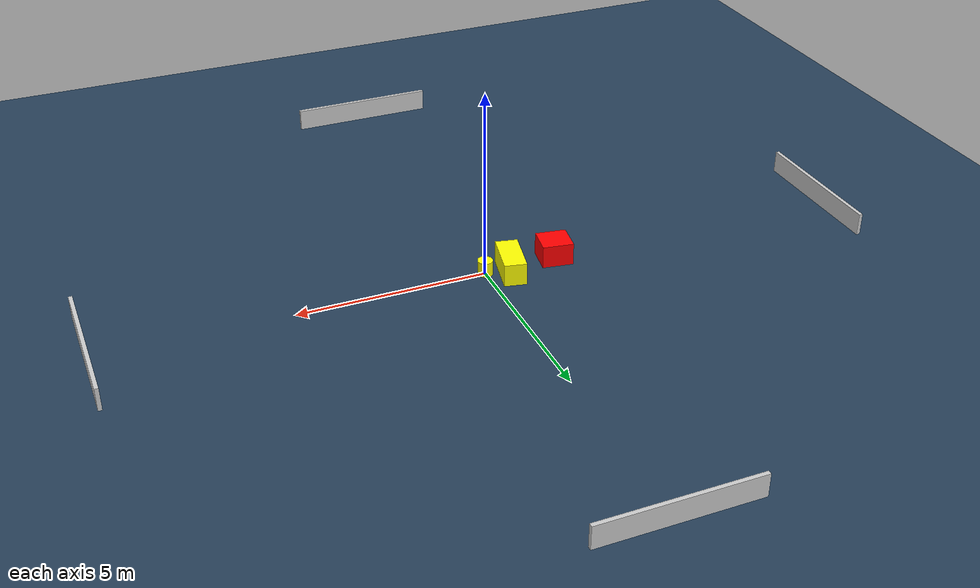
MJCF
<?xml version="1.0" ?>
<mujoco model="generated_environment">
  <option timestep="0.01" integrator="RK4" cone="elliptic"/>
  <default>
    <geom density="1"/>
  </default>
  <asset>
    <texture builtin="gradient" height="3072" name="skybox" rgb1="0.3 0.5 0.7" rgb2="0 0 0" type="skybox" width="512"/>
    <texture builtin="checker" height="300" name="groundplane" rgb1="0.2 0.3 0.4" rgb2="0.1 0.2 0.3" type="2d" width="300"/>
    <material name="groundplane" reflectance="0.2" texrepeat="5 5" texture="groundplane"/>
  </asset>
  <worldbody>
    <light dir="0 0 -1" directional="true" pos="0 0 1.5"/>
    <geom condim="3" friction="0.5 0.005 0.001" material="groundplane" name="floor" pos="0 0 0" size="0 0 0.05" type="plane"/>
    <body name="walls">
      <geom name="wall_1" condim="4" pos="-10.0 0.0 0.3" rgba="0.800000011920929 0.800000011920929 0.800000011920929 1.0" size="0.05 2.0 0.3" type="box"/>
      <geom name="wall_2" condim="4" pos="10.0 0.0 0.3" rgba="0.800000011920929 0.800000011920929 0.800000011920929 1.0" size="0.05 2.0 0.3" type="box"/>
      <geom name="wall_3" condim="4" pos="0.0 -10.0 0.3" rgba="0.800000011920929 0.800000011920929 0.800000011920929 1.0" size="2.0 0.05 0.3" type="box"/>
      <geom name="wall_4" condim="4" pos="0.0 10.0 0.3" rgba="0.800000011920929 0.800000011920929 0.800000011920929 1.0" size="2.0 0.05 0.3" type="box"/>
    </body>
    <body name="robot">
      <joint name="joint_x" type="slide" pos="0 0 0" axis="1 0 0"/>
      <joint name="joint_y" type="slide" pos="0 0 0" axis="0 1 0"/>
      <geom name="robot" type="cylinder" pos="0.0 0.0 0.2" size="0.2 0.2 0.0" mass="5.0" friction="1.0 0.005 0.0001" condim="4" rgba="1.0 1.0 0.0 1.0"/>
    </body>
    <body name="obstacle_1_movable">
      <geom name="obstacle_1_movable" condim="4" pos="-0.6163080674950923 0.21213849957553182 0.3" euler="0 0 168.00921185356788" friction="0.0 0.005 0.001" rgba="1.0 1.0 0.0 1.0" size="0.292438210897017 0.614619666768704 0.3" type="box" mass="0.1"/>
      <joint type="free"/>
    </body>
    <body name="obstacle_2_static">
      <geom name="obstacle_2_static" condim="4" pos="-1.931628149439587 0.001973831275728629 0.3" euler="0 0 171.23499138283083" friction="0.0 0.005 0.001" rgba="1.0 0.0 0.0 1.0" size="0.4065231450245264 0.3821999881651976 0.3" type="box"/>
    </body>
  </worldbody>
  <actuator>
    <motor name="actuator_x" joint="joint_x" gear="1" ctrlrange="-1 1"/>
    <motor name="actuator_y" joint="joint_y" gear="1" ctrlrange="-1 1"/>
  </actuator>
</mujoco>
